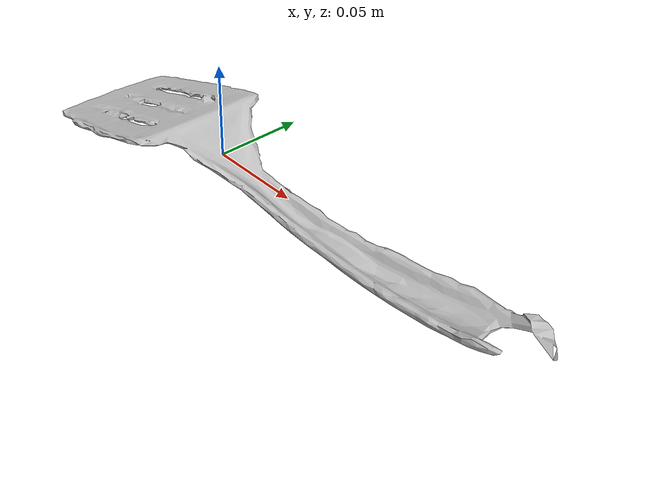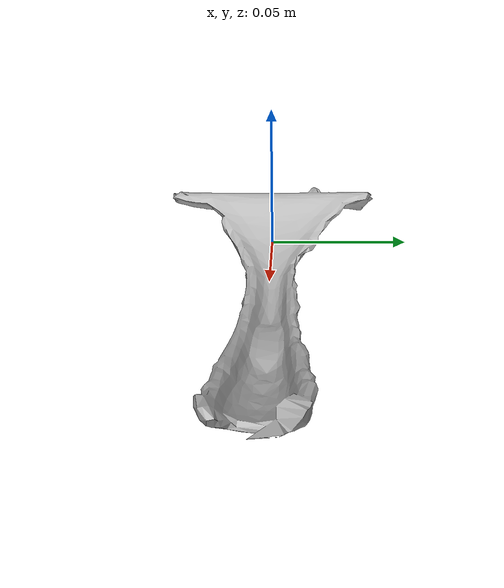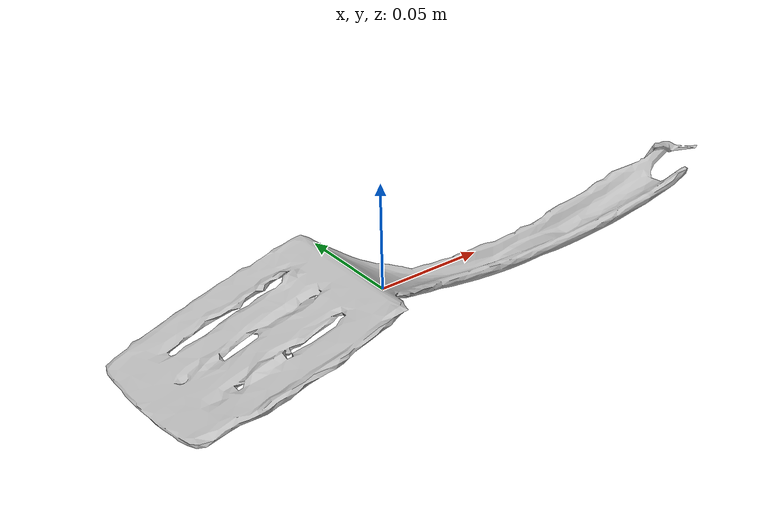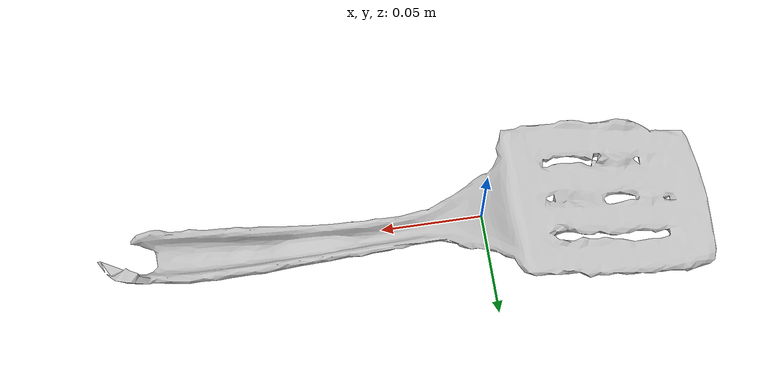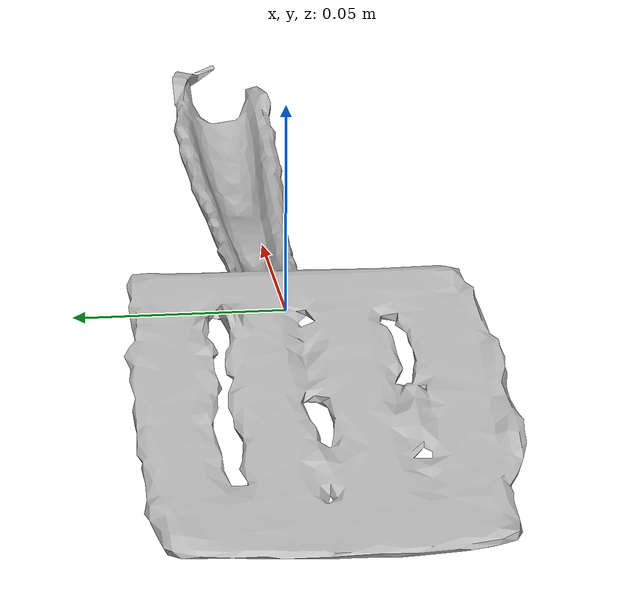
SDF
<?xml version='1.0'?>
<sdf version='1.6'>
	<model name='b_spatula'>
		<static>false</static>
		<pose>0 0 0 0 0 0</pose>

		<link name='link'>
			<inertial>
			<mass>0.11</mass>
			<pose>0.00088072 -6.5132e-05 0.00086388 0 0 0</pose>
				<inertia>
					<ixx>8.1404e-07</ixx>
					<ixy>0</ixy>
					<ixz>0</ixz>
					<iyy>1.1521e-06</iyy>
					<iyz>0</iyz>
					<izz>5.3661e-07</izz>
				</inertia>
			</inertial>

			<sensor name="tool_contact_sensor" type="contact">
				<always_on>true</always_on>
				<update_rate>30.0</update_rate>
				<contact>
					<collision>collision</collision>
				</contact>
				<plugin name="tool_bumper" filename="libgazebo_ros_bumper.so">
					<bumperTopicName>tool_contact_sensor_state</bumperTopicName>
					<frameName>world</frameName>
				</plugin>
			</sensor>

			<collision name='collision'>
				<geometry>
					<mesh>
						<uri>model://b_spatula/b_spatula.dae</uri>
					</mesh>
				</geometry>
				<surface>
					<friction>
						<ode>
							<mu>0.2</mu>
							<mu2>0.2</mu2>
						</ode>
					</friction>
				</surface>
			</collision>
			<visual name='visual'>
				<geometry>
					<mesh>
						<uri>model://b_spatula/b_spatula.dae</uri>
					</mesh>
				</geometry>
			</visual>
		</link>
	</model>
</sdf>
